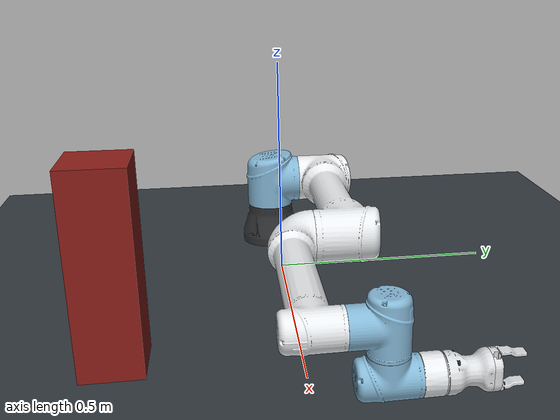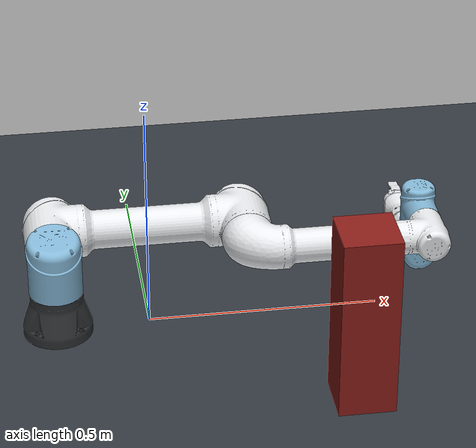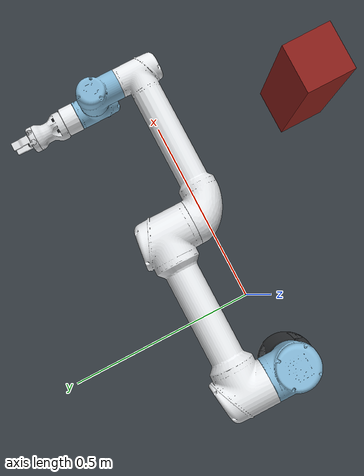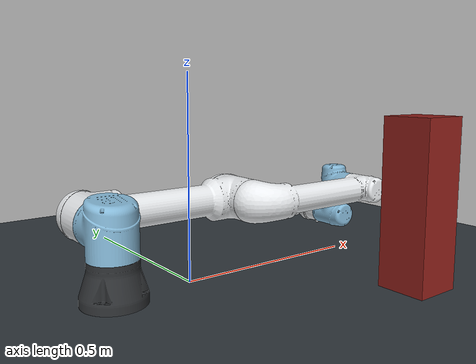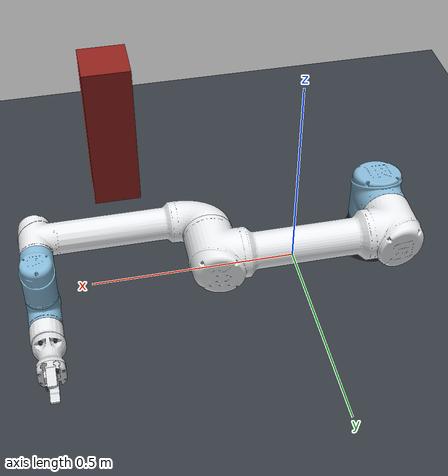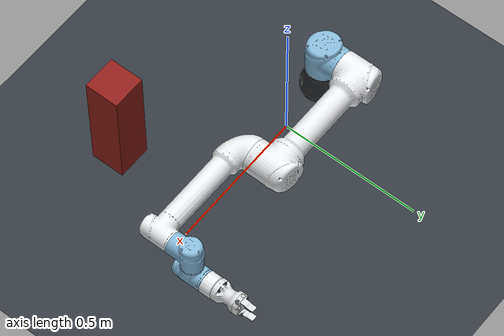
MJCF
<?xml version="1.0" encoding="utf-8"?>
<mujoco model="UR5e + Robotiq Hand-E migration">
  <compiler angle="radian" eulerseq="xyz" meshdir="../assets/meshes"
            autolimits="true" inertiafromgeom="false" fusestatic="false"/>
  <option timestep="0.002" integrator="implicitfast" gravity="0 0 -9.81">
    <flag contact="enable"/>
  </option>
  <size njmax="2000" nconmax="500"/>
  <statistic center="0 0 0.35" extent="1.25"/>

  <visual>
    <headlight diffuse="0.75 0.75 0.75" ambient="0.25 0.25 0.25" specular="0.2 0.2 0.2"/>
    <rgba haze="0.15 0.25 0.35 1"/>
    <global azimuth="135" elevation="-25"/>
  </visual>

  <default>
    <joint limited="true" damping="1.0" armature="0.01" frictionloss="0.05"/>
    <geom condim="4" friction="0.8 0.02 0.002" solref="0.005 1" solimp="0.9 0.95 0.001"/>
    <default class="visual">
      <geom type="mesh" contype="0" conaffinity="0" group="2" density="0"/>
    </default>
    <default class="collision">
      <!-- Alpha zero keeps planning/physics proxies hidden in the normal view. -->
      <geom contype="1" conaffinity="1" group="3" rgba="0.2 0.9 0.25 0"/>
    </default>
    <default class="arm_joint">
      <joint type="hinge" axis="0 0 1" damping="2.0" armature="0.05"/>
    </default>
    <default class="finger_joint">
      <joint type="slide" damping="4.0" armature="0.005"/>
    </default>
  </default>

  <asset>
    <texture name="ground_tex" type="2d" builtin="checker" rgb1="0.24 0.27 0.30"
             rgb2="0.16 0.18 0.20" width="512" height="512"/>
    <material name="ground_mat" texture="ground_tex" texrepeat="6 6" reflectance="0.08"/>
    <material name="ur_white" rgba="0.91 0.92 0.93 1"/>
    <material name="ur_blue" rgba="0.52 0.72 0.84 1"/>
    <material name="ur_dark" rgba="0.18 0.19 0.20 1"/>
    <material name="hande_white" rgba="0.86 0.87 0.88 1"/>
    <material name="hande_dark" rgba="0.14 0.15 0.16 1"/>

    <!-- UR5e visual meshes. The lower-poly collision meshes are intentionally
         not used: XRDF spheres give deterministic and inexpensive contacts. -->
    <mesh name="base_visual" file="mesh.obj"/>
    <mesh name="shoulder_visual" file="mesh_2.obj"/>
    <mesh name="upper_arm_visual" file="mesh_4.obj"/>
    <mesh name="forearm_visual" file="mesh_6.obj"/>
    <mesh name="wrist_1_visual" file="mesh_8.obj"/>
    <mesh name="wrist_2_visual" file="mesh_10.obj"/>
    <mesh name="wrist_3_visual" file="mesh_12.obj"/>

    <!-- Robotiq Hand-E base meshes. -->
    <mesh name="hande_washer_11" file="toothed_lock_washer_metric_robotiq_11ROBOTIQ_HAND_E_DEFEATURE.obj"/>
    <mesh name="hande_group3_0" file="Group3ROBOTIQ_HAND_E_DEFEATURE.obj"/>
    <mesh name="hande_screw_6" file="socket_head_cap_screw_iso_robotiq_6ROBOTIQ_HAND_E_DEFEATURE.obj"/>
    <mesh name="hande_washer_13" file="toothed_lock_washer_metric_robotiq_13ROBOTIQ_HAND_E_DEFEATURE.obj"/>
    <mesh name="hande_group3_1" file="Group3ROBOTIQ_HAND_E_DEFEATURE_1.obj"/>
    <mesh name="hande_washer_10" file="toothed_lock_washer_metric_robotiq_10ROBOTIQ_HAND_E_DEFEATURE.obj"/>
    <mesh name="hande_screw_24" file="socket_head_cap_screw_iso_robotiq_24ROBOTIQ_HAND_E_DEFEATURE.obj"/>
    <mesh name="hande_group3_2" file="Group3ROBOTIQ_HAND_E_DEFEATURE_2.obj"/>
    <mesh name="hande_washer_12" file="toothed_lock_washer_metric_robotiq_12ROBOTIQ_HAND_E_DEFEATURE.obj"/>
    <mesh name="hande_group3_3" file="Group3ROBOTIQ_HAND_E_DEFEATURE_3.obj"/>
    <mesh name="hande_screw_7" file="socket_head_cap_screw_iso_robotiq_7ROBOTIQ_HAND_E_DEFEATURE.obj"/>
    <mesh name="hande_screw_25" file="socket_head_cap_screw_iso_robotiq_25ROBOTIQ_HAND_E_DEFEATURE.obj"/>
    <mesh name="hande_group3_4" file="Group3ROBOTIQ_HAND_E_DEFEATURE_4.obj"/>
    <mesh name="hande_group2" file="Group2ROBOTIQ_HAND_E_DEFEATURE.obj"/>
    <mesh name="hande_group3_5" file="Group3ROBOTIQ_HAND_E_DEFEATURE_5.obj"/>
    <mesh name="hande_group1" file="Group1ROBOTIQ_HAND_E_DEFEATURE.obj"/>

    <!-- Robotiq moving finger meshes. -->
    <mesh name="left_finger_0" file="D_A03_ASM_DOIGTS_PARALLELES_1ROBOTIQ_HAND_E_DEFEATURE.obj"/>
    <mesh name="left_finger_1" file="D_A03_ASM_DOIGTS_PARALLELES_1ROBOTIQ_HAND_E_DEFEATURE_1.obj"/>
    <mesh name="left_finger_2" file="D_A03_ASM_DOIGTS_PARALLELES_1ROBOTIQ_HAND_E_DEFEATURE_2.obj"/>
    <mesh name="right_finger_0" file="D_A03_ASM_DOIGTS_PARALLELES_1ROBOTIQ_HAND_E_DEFEATURE_3.obj"/>
    <mesh name="right_finger_1" file="D_A03_ASM_DOIGTS_PARALLELES_1ROBOTIQ_HAND_E_DEFEATURE_4.obj"/>
    <mesh name="right_finger_2" file="D_A03_ASM_DOIGTS_PARALLELES_1ROBOTIQ_HAND_E_DEFEATURE_5.obj"/>
  </asset>

  <worldbody>
    <light name="key" pos="1.5 -1.5 2.5" dir="-0.5 0.5 -1" diffuse="0.85 0.85 0.85"/>
    <light name="fill" pos="-1 1 1.8" dir="0.4 -0.4 -1" diffuse="0.35 0.35 0.35"/>
    <geom name="ground" type="plane" size="3 3 0.05" material="ground_mat"
          contype="1" conaffinity="1"/>

    <!-- A fixed example obstacle. It does not fall when simulation starts. -->
    <body name="example_obstacle" pos="0.40 -0.35 0.20">
      <geom name="example_obstacle_geom" type="box" size="0.06 0.06 0.20"
            rgba="0.55 0.12 0.10 1" contype="1" conaffinity="1"/>
    </body>

    <!-- Move this mocap body to display a desired TCP pose. -->
    <body name="tcp_target" mocap="true" pos="0.30 0.12 0.37">
      <site name="tcp_target_site" type="sphere" size="0.008" rgba="0.1 0.9 0.2 0.8" group="4"/>
      <site name="tcp_target_x" type="cylinder" fromto="0 0 0 0.04 0 0" size="0.002" rgba="1 0.15 0.15 0.8" group="4"/>
      <site name="tcp_target_y" type="cylinder" fromto="0 0 0 0 0.04 0" size="0.002" rgba="0.15 1 0.15 0.8" group="4"/>
      <site name="tcp_target_z" type="cylinder" fromto="0 0 0 0 0 0.04" size="0.002" rgba="0.15 0.35 1 0.8" group="4"/>
    </body>

    <!-- Preserve /World/ur5e xformOp:translate from ur5e_insertion.usd so
         previously recorded world-frame TCP targets remain compatible. -->
    <body name="base_link" pos="-0.20000000298023224 -0.011434281743887525 0">
      <inertial pos="0 0 0" mass="4" diaginertia="0.00443333155 0.00443333155 0.00719999988"/>
      <geom class="visual" mesh="base_visual" quat="0.7071100009174303 0.707103561441004 0 0" material="ur_dark"/>
      <geom class="collision" name="base_collision" type="cylinder" pos="0 0 0.0495" size="0.0755 0.0495"/>

      <body name="shoulder_link" pos="0 0 0.162499994" euler="0 0 -3.14159257" gravcomp="1">
        <inertial pos="0 0 0" mass="3.70000005" diaginertia="0.0102674961 0.0102674961 0.00665999996"/>
        <joint class="arm_joint" name="shoulder_pan_joint" range="-6.28318531 6.28318531"/>
        <geom class="visual" mesh="shoulder_visual"
              quat="2.955358945513185e-08 2.9553320317879705e-08 -0.7071035614410033 -0.7071100009174296"
              material="ur_blue"/>
        <geom class="collision" name="shoulder_collision_0" type="sphere" pos="-0.001 0.001 0.004" size="0.0686"/>
        <geom class="collision" name="shoulder_collision_1" type="sphere" pos="-0.001 -0.016 -0.006" size="0.0678"/>

        <body name="upper_arm_link" euler="1.57079627 0 0" gravcomp="1">
          <inertial pos="-0.212500006 0 0.137999997" mass="8.39299965"
                    fullinertia="0.0151073998 0.133885786 0.133885786 0 4.06561095e-09 0"/>
          <joint class="arm_joint" name="shoulder_lift_joint" range="-6.28318531 6.28318531"/>
          <geom class="visual" mesh="upper_arm_visual" pos="0 -8.22544133e-09 0.137999997"
                quat="3.169340456974553e-06 0.7071067659041339 -0.7071067964544371 -3.239585346034271e-06"
                material="ur_white"/>
          <geom class="collision" name="upper_collision_0" type="sphere" pos="-0.183 0 0.150" size="0.0695"/>
          <geom class="collision" name="upper_collision_1" type="sphere" pos="-0.344 0 0.126" size="0.0689"/>
          <geom class="collision" name="upper_collision_2" type="sphere" pos="-0.030 0 0.146" size="0.0689"/>
          <geom class="collision" name="upper_collision_3" type="sphere" pos="-0.425 0 0.142" size="0.0689"/>
          <geom class="collision" name="upper_collision_4" type="sphere" pos="-0.270 -0.001 0.151" size="0.0689"/>
          <geom class="collision" name="upper_collision_5" type="sphere" pos="-0.110 0 0.137" size="0.0689"/>
          <geom class="collision" name="upper_collision_6" type="sphere" pos="0.001 0 0.135" size="0.0684"/>
          <geom class="collision" name="upper_collision_7" type="sphere" pos="-0.226 -0.001 0.123" size="0.0678"/>

          <body name="forearm_link" pos="-0.425000012 0 0" euler="5.96046448e-08 0 0" gravcomp="1">
            <inertial pos="-0.196099997 0 0.00700000022" mass="2.2750001"
                      fullinertia="0.00409500068 0.0312093552 0.0312093552 0 9.28084817e-10 0"/>
            <joint class="arm_joint" name="elbow_joint" range="-3.14159265 3.14159265"/>
            <geom class="visual" mesh="forearm_visual" pos="0 0 0.00700000022"
                  quat="3.1904138829311646e-06 0.7071067659040391 -0.7071067964545334 -3.2185119209881463e-06"
                  material="ur_white"/>
            <geom class="collision" name="forearm_collision_0" type="sphere" pos="-0.062 0.001 0.012" size="0.0586"/>
            <geom class="collision" name="forearm_collision_1" type="sphere" pos="-0.225 0 0.013" size="0.0571"/>
            <geom class="collision" name="forearm_collision_2" type="sphere" pos="-0.155 -0.002 0.013" size="0.0571"/>
            <geom class="collision" name="forearm_collision_3" type="sphere" pos="-0.317 0 -0.001" size="0.0526"/>
            <geom class="collision" name="forearm_collision_4" type="sphere" pos="-0.386 0 0.021" size="0.0486"/>
            <geom class="collision" name="forearm_collision_5" type="sphere" pos="-0.010 0.001 -0.018" size="0.0521"/>
            <geom class="collision" name="forearm_collision_6" type="sphere" pos="-0.268 0 -0.001" size="0.0541"/>
            <geom class="collision" name="forearm_collision_7" type="sphere" pos="-0.122 0 0.005" size="0.0576"/>

            <body name="wrist_1_link" pos="-0.392199993 0 0.133300006" gravcomp="1">
              <inertial pos="0 0 0" mass="1.21899998" diaginertia="0.00255989889 0.00255989889 0.00219419994"/>
              <joint class="arm_joint" name="wrist_1_joint" range="-6.28318531 6.28318531"/>
              <geom class="visual" mesh="wrist_1_visual" pos="-1.16534574e-08 0 -0.127000016"
                    quat="4.536794896693603e-06 0.9999999999897088 0 0" material="ur_blue"/>
              <geom class="collision" name="wrist1_collision_0" type="sphere" pos="0 -0.009 -0.007" size="0.0463"/>
              <geom class="collision" name="wrist1_collision_1" type="sphere" pos="0 0.014 -0.033" size="0.0463"/>
              <geom class="collision" name="wrist1_collision_2" type="sphere" pos="-0.001 0.016 0" size="0.0456"/>

              <body name="wrist_2_link" pos="-1.16534573e-08 -0.0996999964 -1.1857699e-08"
                    euler="1.57079627 0 0" gravcomp="1">
                <inertial pos="0 0 0" mass="1.21899998" diaginertia="0.00255989889 0.00255989889 0.00219419994"/>
                <joint class="arm_joint" name="wrist_2_joint" range="-6.28318531 6.28318531"/>
                <geom class="visual" mesh="wrist_2_visual" pos="0 5.96303247e-09 -0.0997000039"
                      quat="0.7071099797043231 0.7071035826543037 0 0" material="ur_blue"/>
                <geom class="collision" name="wrist2_collision_0" type="sphere" pos="0 -0.013 0" size="0.0466"/>
                <geom class="collision" name="wrist2_collision_1" type="sphere" pos="0.001 0.015 0.001" size="0.0454"/>

                <body name="wrist_3_link" pos="0 0.0996000022 -1.53438583e-09"
                      quat="0.7071068224797781 -0.707106739893312 -6.181723851757021e-08 -2.8247027109476064e-15"
                      gravcomp="1">
                  <inertial pos="0 0 -0.0228999984" mass="0.187900007"
                            diaginertia="9.89041e-05 9.89041e-05 0.000132117188"/>
                  <joint class="arm_joint" name="wrist_3_joint" range="-6.28318531 6.28318531"/>
                  <geom class="visual" mesh="wrist_3_visual" pos="-8.7073101e-09 -5.91533006e-09 -0.0989000276"
                        quat="4.566794896510968e-06 0.9999999999895722 0 0" material="ur_white"/>
                  <geom class="collision" name="wrist3_collision_0" type="sphere" pos="0.013 -0.007 -0.023" size="0.0272"/>
                  <geom class="collision" name="wrist3_collision_1" type="sphere" pos="-0.013 0.006 -0.022" size="0.0272"/>
                  <geom class="collision" name="wrist3_collision_2" type="sphere" pos="0.009 0.012 -0.022" size="0.0272"/>
                  <geom class="collision" name="hande_base_collision_0" type="sphere" pos="0 0 0.010" size="0.040"/>
                  <geom class="collision" name="hande_base_collision_1" type="sphere" pos="0 -0.001 0.057" size="0.040"/>

                  <!-- Exact fixed TCP transform from ur5e_cumotion.urdf. -->
                  <site name="tcp" type="sphere" size="0.006" group="4"
                        pos="0.002504158005067814 -0.001958227572379068 0.1361764956035346"
                        quat="0.7071067254655244 2.7185828886048254e-05 -2.8880142212134922e-05 0.7071068357951941"
                        rgba="0.1 1 0.2 0.9"/>

                  <body name="hande_base_link" pos="-8.70730921e-09 0 -2.9802322e-08"
                        quat="5.706854901819317e-17 -1.7948965149208049e-09 0.9999999999999994 -3.179489655464128e-08"
                        gravcomp="1">
                    <!-- Approximate Hand-E inertial; replace with measured CAD data
                         before force-sensitive grasping experiments. -->
                    <inertial pos="0 0 -0.075" mass="0.90" diaginertia="0.0012 0.0012 0.0008"/>

                    <geom class="visual" mesh="hande_washer_11" pos="-0.00250428345 -0.00195366552 -0.0790737225" euler="-1.57079633 0 -8.74227727e-08" material="hande_dark"/>
                    <geom class="visual" mesh="hande_group3_0" pos="-0.00250428345 -0.00195366552 -0.0790737225" euler="-1.57079633 0 -8.74227727e-08" material="hande_dark"/>
                    <geom class="visual" mesh="hande_screw_6" pos="-0.00250428345 -0.00195366552 -0.0790737225" euler="-1.57079633 0 -8.74227727e-08" material="hande_dark"/>
                    <geom class="visual" mesh="hande_washer_13" pos="-0.00250428345 -0.00195366552 -0.0790737225" euler="-1.57079633 0 -8.74227727e-08" material="hande_dark"/>
                    <geom class="visual" mesh="hande_group3_1" pos="-0.00250428345 -0.00195366552 -0.0790737225" euler="-1.57079633 0 -8.74227727e-08" material="hande_dark"/>
                    <geom class="visual" mesh="hande_washer_10" pos="-0.00250428345 -0.00195366552 -0.0790737225" euler="-1.57079633 0 -8.74227727e-08" material="hande_dark"/>
                    <geom class="visual" mesh="hande_screw_24" pos="-0.00250428345 -0.00195366552 -0.0790737225" euler="-1.57079633 0 -8.74227727e-08" material="hande_dark"/>
                    <geom class="visual" mesh="hande_group3_2" pos="-0.00250428345 -0.00195366552 -0.0790737225" euler="-1.57079633 0 -8.74227727e-08" material="hande_dark"/>
                    <geom class="visual" mesh="hande_washer_12" pos="-0.00250428345 -0.00195366552 -0.0790737225" euler="-1.57079633 0 -8.74227727e-08" material="hande_dark"/>
                    <geom class="visual" mesh="hande_group3_3" pos="-0.00250428345 -0.00195366552 -0.0790737225" euler="-1.57079633 0 -8.74227727e-08" material="hande_dark"/>
                    <geom class="visual" mesh="hande_screw_7" pos="-0.00250428345 -0.00195366552 -0.0790737225" euler="-1.57079633 0 -8.74227727e-08" material="hande_dark"/>
                    <geom class="visual" mesh="hande_screw_25" pos="-0.00250428345 -0.00195366552 -0.0790737225" euler="-1.57079633 0 -8.74227727e-08" material="hande_dark"/>
                    <geom class="visual" mesh="hande_group3_4" pos="-0.00250428345 -0.00195366552 -0.0790737225" euler="-1.57079633 0 -8.74227727e-08" material="hande_dark"/>
                    <geom class="visual" mesh="hande_group2" pos="-0.00250428345 -0.00195366552 -0.0790737225" euler="-1.57079633 0 -8.74227727e-08" material="hande_white"/>
                    <geom class="visual" mesh="hande_group3_5" pos="-0.00250428345 -0.00195366552 -0.0790737225" euler="-1.57079633 0 -8.74227727e-08" material="hande_dark"/>
                    <geom class="visual" mesh="hande_group1" pos="-0.00250428345 -0.00195366552 -0.0790737225" euler="-1.57079633 0 -8.74227727e-08" material="hande_white"/>

                    <body name="left_gripper" pos="0.00874571387 -0.037726385 -0.0771737225"
                          quat="0.7071067800533717 -0.707106782319722 3.090861775268274e-08 -3.0908617653617423e-08"
                          gravcomp="1">
                      <inertial pos="-0.006 0.031 0.022" mass="0.05" diaginertia="3e-05 2e-05 2e-05"/>
                      <joint class="finger_joint" name="Slider_1" axis="0 0 -1" range="-0.025 0.025"/>
                      <geom class="visual" mesh="left_finger_0" pos="-0.0112500004 0.00190000003 0.0357758645" material="hande_dark"/>
                      <geom class="visual" mesh="left_finger_1" pos="-0.0112500004 0.00190000003 0.0357758645" material="hande_dark"/>
                      <geom class="visual" mesh="left_finger_2" pos="-0.0112500004 0.00190000003 0.0357758645" material="hande_white"/>
                      <geom class="collision" name="left_finger_collision" type="box"
                            pos="-0.006 0.031 0.022" size="0.012 0.030 0.015"/>
                    </body>

                    <body name="right_gripper" pos="-0.0137542808 0.0338190539 -0.0771737225"
                          quat="0.7071067800533717 -0.707106782319722 3.090861775268274e-08 -3.0908617653617423e-08"
                          gravcomp="1">
                      <inertial pos="0.006 0.031 -0.022" mass="0.05" diaginertia="3e-05 2e-05 2e-05"/>
                      <joint class="finger_joint" name="Slider_2" axis="0 0 1" range="-0.025 0.025"/>
                      <geom class="visual" mesh="right_finger_0" pos="0.0112500004 0.00190000003 -0.0357758645" material="hande_dark"/>
                      <geom class="visual" mesh="right_finger_1" pos="0.0112500004 0.00190000003 -0.0357758645" material="hande_dark"/>
                      <geom class="visual" mesh="right_finger_2" pos="0.0112500004 0.00190000003 -0.0357758645" material="hande_white"/>
                      <geom class="collision" name="right_finger_collision" type="box"
                            pos="0.006 0.031 -0.022" size="0.012 0.030 0.015"/>
                    </body>
                  </body>
                </body>
              </body>
            </body>
          </body>
        </body>
      </body>
    </body>
  </worldbody>

  <contact>
    <!-- Equivalent to the adjacent-link ignore list in the supplied XRDF. -->
    <exclude body1="base_link" body2="shoulder_link"/>
    <exclude body1="shoulder_link" body2="upper_arm_link"/>
    <exclude body1="upper_arm_link" body2="forearm_link"/>
    <exclude body1="forearm_link" body2="wrist_1_link"/>
    <exclude body1="wrist_1_link" body2="wrist_2_link"/>
    <exclude body1="wrist_2_link" body2="wrist_3_link"/>
    <exclude body1="wrist_3_link" body2="hande_base_link"/>
    <exclude body1="hande_base_link" body2="left_gripper"/>
    <exclude body1="hande_base_link" body2="right_gripper"/>
  </contact>

  <equality>
    <!-- Both exported slider coordinates use the same opening value. -->
    <joint name="finger_sync" joint1="Slider_1" joint2="Slider_2" polycoef="0 1 0 0 0"/>
  </equality>

  <actuator>
    <position name="shoulder_pan" joint="shoulder_pan_joint" kp="1200" kv="80"
              forcelimited="true" forcerange="-150 150" ctrlrange="-6.28318531 6.28318531"/>
    <position name="shoulder_lift" joint="shoulder_lift_joint" kp="1200" kv="80"
              forcelimited="true" forcerange="-150 150" ctrlrange="-6.28318531 6.28318531"/>
    <position name="elbow" joint="elbow_joint" kp="1000" kv="70"
              forcelimited="true" forcerange="-150 150" ctrlrange="-3.14159265 3.14159265"/>
    <position name="wrist_1" joint="wrist_1_joint" kp="500" kv="35"
              forcelimited="true" forcerange="-28 28" ctrlrange="-6.28318531 6.28318531"/>
    <position name="wrist_2" joint="wrist_2_joint" kp="500" kv="35"
              forcelimited="true" forcerange="-28 28" ctrlrange="-6.28318531 6.28318531"/>
    <position name="wrist_3" joint="wrist_3_joint" kp="350" kv="25"
              forcelimited="true" forcerange="-28 28" ctrlrange="-6.28318531 6.28318531"/>
    <position name="gripper" joint="Slider_1" kp="2500" kv="30"
              forcelimited="true" forcerange="-200 200" ctrlrange="-0.025 0.025"/>
  </actuator>

  <keyframe>
    <!-- Joint order: six UR5e joints, Slider_1, Slider_2. -->
    <key name="home"
         qpos="-0.00011260862811468542 -1.5705478191375732 1.5708955526351929 -1.5707768201828003 -1.570802092552185 -4.7790759793997495e-08 0.02 0.02"
         ctrl="-0.00011260862811468542 -1.5705478191375732 1.5708955526351929 -1.5707768201828003 -1.570802092552185 -4.7790759793997495e-08 0.02"/>
  </keyframe>
</mujoco>
